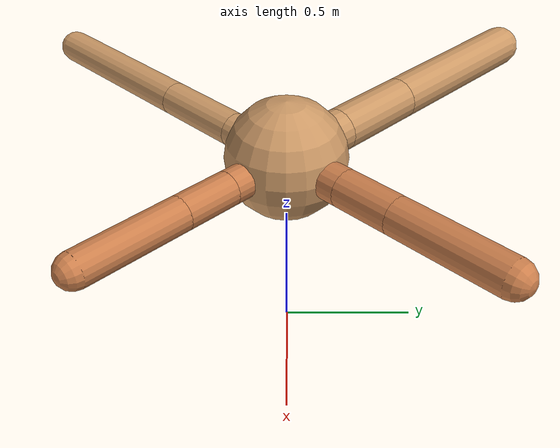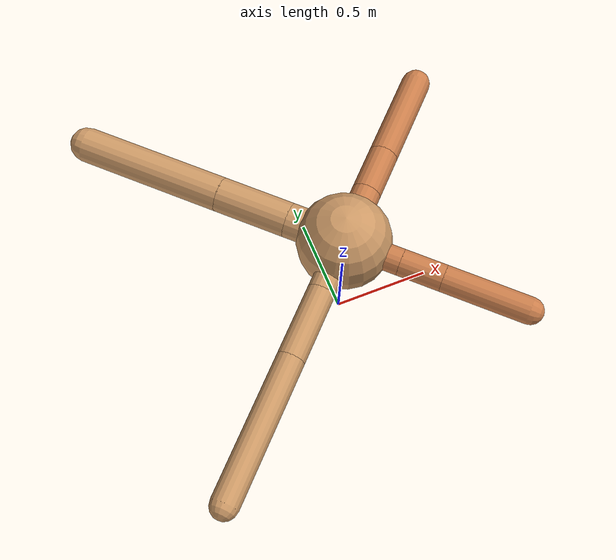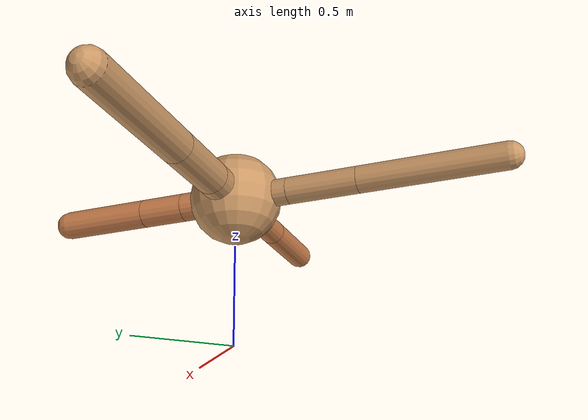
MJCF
<?xml version="1.0" ?>
<mujoco model="ant">

	<compiler angle="degree" coordinate="local" inertiafromgeom="true"/>

	<option integrator="RK4" timestep="0.01"/>

	<custom>

		<numeric data="0.0 0.0 0.55 1.0 0.0 0.0 0.0 0.0 1.0 0.0 -1.0 0.0 -1.0 0.0 1.0" name="init_qpos"/>

	</custom>

	<default>

		<joint armature="1" damping="1" limited="true"/>

		<geom conaffinity="0" condim="3" density="5.0" friction="1.5 0.1 0.1" margin="0.01" rgba="0.8 0.6 0.4 1"/>

	</default>

	<worldbody>

		<body name="torso" pos="0 0 0.75">

			<geom name="torso_geom" pos="0 0 0" size="0.2280694776911133" type="sphere"/>

			<!--joint armature="0" damping="0" limited="false" margin="0.01" name="root" pos="0 0 0" type="free"/-->

			<body name="front_left_leg" pos="0 0 0">

				<geom fromto="0 0 0 0.2 0.2 0" name="aux_1_geom" size="0.07110107210512392" type="capsule" rgba=".8 .5 .3 1"/>

				<body name="aux_1" pos="0.2 0.2 0">

					<joint axis="0 0 1" name="hip_1" pos="0.0 0.0 0.0" range="-40 40" type="hinge"/>

					<geom fromto="0 0 0 0.1602943410869485 0.1602943410869485 0" name="left_leg_geom" size="0.07110107210512392" type="capsule" rgba=".8 .5 .3 1"/>

					<body pos="0.1602943410869485 0.1602943410869485 0" name="front_left_foot">

						<joint axis="-1 1 0" name="ankle_1" pos="0.0 0.0 0.0" range="30 100" type="hinge"/>

						<geom fromto="0 0 0 0.320588682173897 0.320588682173897 0" name="left_ankle_geom" size="0.07110107210512392" type="capsule" rgba=".8 .5 .3 1"/>

					</body>

				</body>

			</body>

			<body name="front_right_leg" pos="0 0 0">

				<geom fromto="0 0 0 -0.2 0.2 0" name="aux_2_geom" size="0.0842735280221681" type="capsule"/>

				<body name="aux_2" pos="-0.2 0.2 0">

					<joint axis="0 0 1" name="hip_2" pos="0.0 0.0 0.0" range="-40 40" type="hinge"/>

					<geom fromto="0 0 0 -0.2518329496230769 0.2518329496230769 0" name="right_leg_geom" size="0.0842735280221681" type="capsule"/>

					<body pos="-0.2518329496230769 0.2518329496230769 0" name="front_right_foot">

						<joint axis="1 1 0" name="ankle_2" pos="0.0 0.0 0.0" range="-100 -30" type="hinge"/>

						<geom fromto="0 0 0 -0.5036658992461538 0.5036658992461538 0" name="right_ankle_geom" size="0.0842735280221681" type="capsule"/>

					</body>

				</body>

			</body>

			<body name="left_back_leg" pos="0 0 0">

				<geom fromto="0 0 0 -0.2 -0.2 0" name="aux_3_geom" size="0.06627668712022942" type="capsule"/>

				<body name="aux_3" pos="-0.2 -0.2 0">

					<joint axis="0 0 1" name="hip_3" pos="0.0 0.0 0.0" range="-40 40" type="hinge"/>

					<geom fromto="0 0 0 -0.24990438151952096 -0.24990438151952096 0" name="back_leg_geom" size="0.06627668712022942" type="capsule"/>

					<body pos="-0.24990438151952096 -0.24990438151952096 0" name="left_back_foot">

						<joint axis="-1 1 0" name="ankle_3" pos="0.0 0.0 0.0" range="-100 -30" type="hinge"/>

						<geom fromto="0 0 0 -0.4998087630390419 -0.4998087630390419 0" name="third_ankle_geom" size="0.06627668712022942" type="capsule"/>

					</body>

				</body>

			</body>

			<body name="right_back_leg" pos="0 0 0">

				<geom fromto="0 0 0 0.2 -0.2 0" name="aux_4_geom" size="0.06466179314156503" type="capsule" rgba=".8 .5 .3 1"/>

				<body name="aux_4" pos="0.2 -0.2 0">

					<joint axis="0 0 1" name="hip_4" pos="0.0 0.0 0.0" range="-40 40" type="hinge"/>

					<geom fromto="0 0 0 0.14729761896251722 -0.14729761896251722 0" name="rightback_leg_geom" size="0.06466179314156503" type="capsule" rgba=".8 .5 .3 1"/>

					<body pos="0.14729761896251722 -0.14729761896251722 0" name="right_back_foot">

						<joint axis="1 1 0" name="ankle_4" pos="0.0 0.0 0.0" range="30 100" type="hinge"/>

						<geom fromto="0 0 0 0.29459523792503445 -0.29459523792503445 0" name="fourth_ankle_geom" size="0.06466179314156503" type="capsule" rgba=".8 .5 .3 1"/>

					</body>

				</body>

			</body>

		</body>

	</worldbody>

	<actuator>

		<motor ctrllimited="true" ctrlrange="-1.0 1.0" joint="hip_4" gear="150"/>

		<motor ctrllimited="true" ctrlrange="-1.0 1.0" joint="ankle_4" gear="150"/>

		<motor ctrllimited="true" ctrlrange="-1.0 1.0" joint="hip_1" gear="150"/>

		<motor ctrllimited="true" ctrlrange="-1.0 1.0" joint="ankle_1" gear="150"/>

		<motor ctrllimited="true" ctrlrange="-1.0 1.0" joint="hip_2" gear="150"/>

		<motor ctrllimited="true" ctrlrange="-1.0 1.0" joint="ankle_2" gear="150"/>

		<motor ctrllimited="true" ctrlrange="-1.0 1.0" joint="hip_3" gear="150"/>

		<motor ctrllimited="true" ctrlrange="-1.0 1.0" joint="ankle_3" gear="150"/>

	</actuator>

</mujoco>
